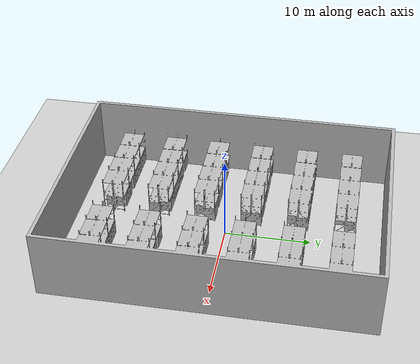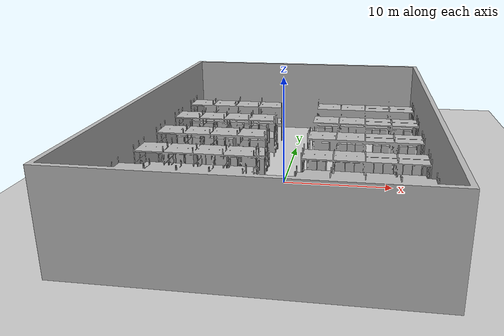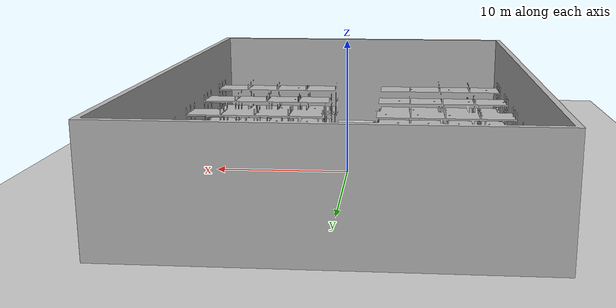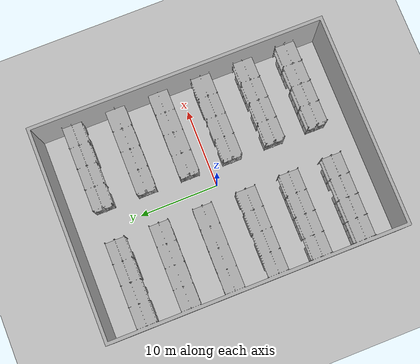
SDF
<?xml version="1.0"?>
<sdf version="1.4">
  <world name="default">
    <include>
      <uri>model://ground_plane</uri>
    </include>
    <include>
      <uri>model://sun</uri>
    </include>
    <model name="warehouse">
      <pose>-12.8 -15 0 0 -0 0</pose>
      <static>true</static>
      <link name="body">
        <inertial>
          <mass>1</mass>
          <inertia>
            <ixx>0.166667</ixx>
            <ixy>0</ixy>
            <ixz>0</ixz>
            <iyy>0.166667</iyy>
            <iyz>0</iyz>
            <izz>0.166667</izz>
          </inertia>
          <pose>0 0 0 0 -0 0</pose>
        </inertial>
        <visual name="visual">
          <geometry>
            <mesh><uri>/usr/share/gazebo-11/worlds/WarehouseScen3/WarehouseScen3.dae</uri></mesh>
          </geometry>
        </visual>
        <collision name='collision'>
          <laser_retro>0</laser_retro>
          <max_contacts>10</max_contacts>
          <pose>0 0 0 0 -0 0</pose>
          <geometry>
            <mesh>
              <uri>/usr/share/gazebo-11/worlds/WarehouseScen3/Warehouse_Assembly_Small_Full_asym3.stl</uri>
              <scale>1 1 1</scale>
            </mesh>
          </geometry>
          <surface>
            <friction>
              <ode>
                <mu>1</mu>
                <mu2>1</mu2>
                <fdir1>0 0 0</fdir1>
                <slip1>0</slip1>
                <slip2>0</slip2>
              </ode>
              <torsional>
                <coefficient>1</coefficient>
                <patch_radius>0</patch_radius>
                <surface_radius>0</surface_radius>
                <use_patch_radius>1</use_patch_radius>
                <ode>
                  <slip>0</slip>
                </ode>
              </torsional>
            </friction>
            <bounce>
              <restitution_coefficient>0</restitution_coefficient>
              <threshold>1e+06</threshold>
            </bounce>
            <contact>
              <collide_without_contact>0</collide_without_contact>
              <collide_without_contact_bitmask>1</collide_without_contact_bitmask>
              <collide_bitmask>1</collide_bitmask>
              <ode>
                <soft_cfm>0</soft_cfm>
                <soft_erp>0.2</soft_erp>
                <kp>1e+13</kp>
                <kd>1</kd>
                <max_vel>0.01</max_vel>
                <min_depth>0</min_depth>
              </ode>
              <bullet>
                <split_impulse>1</split_impulse>
                <split_impulse_penetration_threshold>-0.01</split_impulse_penetration_threshold>
                <soft_cfm>0</soft_cfm>
                <soft_erp>0.2</soft_erp>
                <kp>1e+13</kp>
                <kd>1</kd>
              </bullet>
            </contact>
          </surface>
        </collision>
      </link>
    </model>
  </world>
</sdf>
